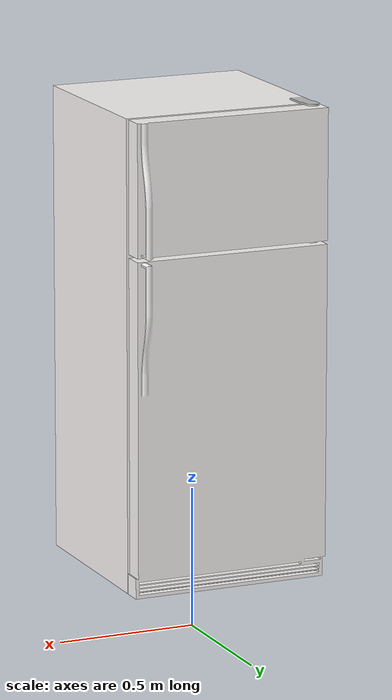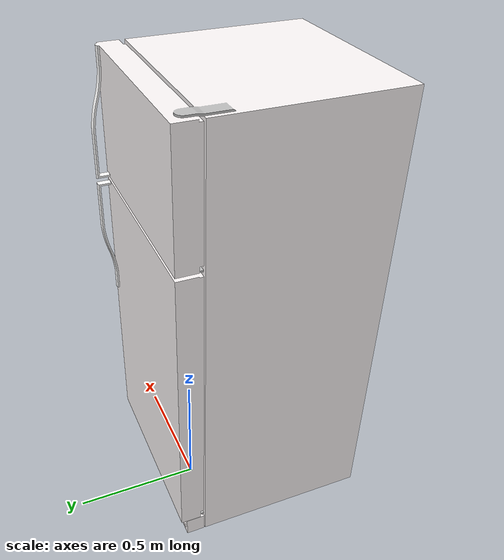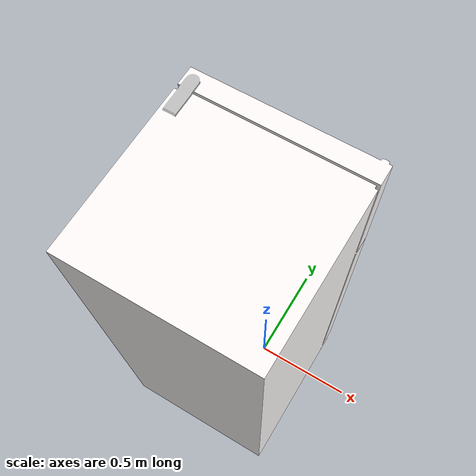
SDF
<?xml version="1.0" ?>
<sdf version="1.5">
  <model name="refrigerator_white_1">
    <link name="link">
      <pose>0 0 0 0 0 0</pose>
      <collision name="collision">
        <geometry>
          <mesh>
            <uri>model://refrigerator_white_1/meshes/model.dae</uri>
          </mesh>
        </geometry>
      </collision>
      <visual name="visual">
        <geometry>
          <mesh>
            <uri>model://refrigerator_white_1/meshes/model.dae</uri>
          </mesh>
        </geometry>
      </visual>
    </link>
    <static>1</static>
  </model>
</sdf>
